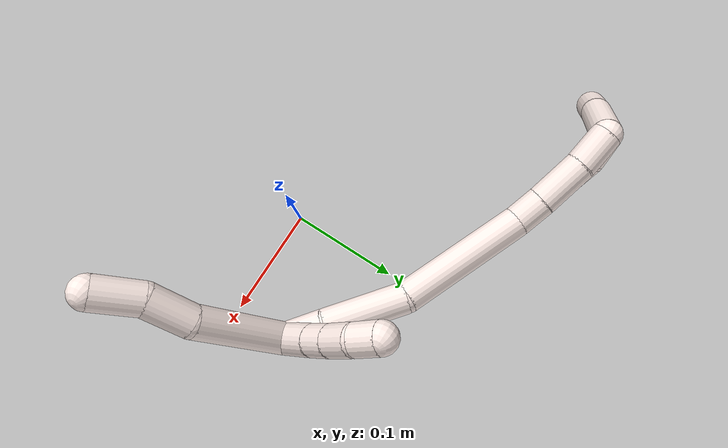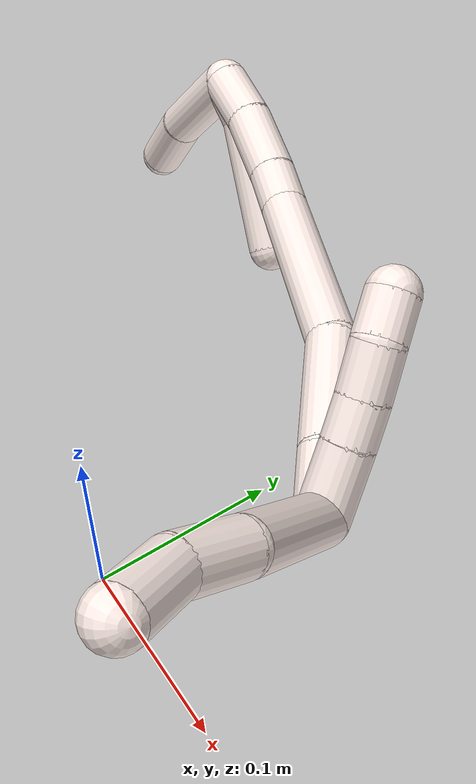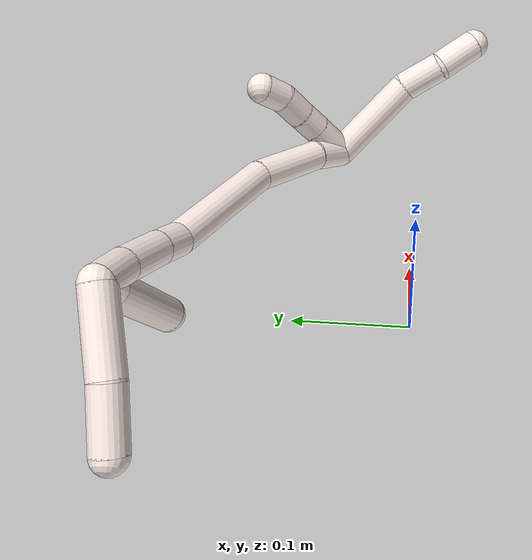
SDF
<sdf version="1.7">
 <world name="default">
  <model name="11">
   <static>0</static>
   <link name="11">
    <collision name="collision-cylinder-e_1_2_8">
     <pose>0.02234 0.021608 -0.024427 -2.41735 0.600591 -1.37054</pose>
     <geometry><cylinder><radius>0.0125</radius><length>0.07906</length></cylinder></geometry>
     <surface>
      <friction><ode><mu>1.16</mu><mu2>1.16</mu2><slip1>0</slip1><slip2>0</slip2></ode></friction>
      <contact><ode><kp>1e+06</kp><kd>1</kd><max_vel>0</max_vel><min_depth>0.001</min_depth></ode></contact>
     </surface>
    </collision>
    <visual name="visual-cylinder-e_1_2_8">
     <pose>0.02234 0.021608 -0.024427 -2.41735 0.600591 -1.37054</pose>
     <geometry><cylinder><radius>0.0125</radius><length>0.07906</length></cylinder></geometry>
     <material><ambient>1 0.933333 0.909804 1</ambient></material>
    </visual>
    <collision name="collision-cylinder-e_2_8_9">
     <pose>0.057583 0.053551 -0.055259 -2.12563 0.81512 -1.31925</pose>
     <geometry><cylinder><radius>0.0125</radius><length>0.035459</length></cylinder></geometry>
     <surface>
      <friction><ode><mu>1.16</mu><mu2>1.16</mu2><slip1>0</slip1><slip2>0</slip2></ode></friction>
      <contact><ode><kp>1e+06</kp><kd>1</kd><max_vel>0</max_vel><min_depth>0.001</min_depth></ode></contact>
     </surface>
    </collision>
    <visual name="visual-cylinder-e_2_8_9">
     <pose>0.057583 0.053551 -0.055259 -2.12563 0.81512 -1.31925</pose>
     <geometry><cylinder><radius>0.0125</radius><length>0.035459</length></cylinder></geometry>
     <material><ambient>1 0.933333 0.909804 1</ambient></material>
    </visual>
    <collision name="collision-cylinder-e_3_9_6">
     <pose>0.08376 0.069819 -0.071829 -2.61327 0.845368 -2.05878</pose>
     <geometry><cylinder><radius>0.0125</radius><length>0.035481</length></cylinder></geometry>
     <surface>
      <friction><ode><mu>1.16</mu><mu2>1.16</mu2><slip1>0</slip1><slip2>0</slip2></ode></friction>
      <contact><ode><kp>1e+06</kp><kd>1</kd><max_vel>0</max_vel><min_depth>0.001</min_depth></ode></contact>
     </surface>
    </collision>
    <visual name="visual-cylinder-e_3_9_6">
     <pose>0.08376 0.069819 -0.071829 -2.61327 0.845368 -2.05878</pose>
     <geometry><cylinder><radius>0.0125</radius><length>0.035481</length></cylinder></geometry>
     <material><ambient>1 0.933333 0.909804 1</ambient></material>
    </visual>
    <collision name="collision-cylinder-e_1_2_10">
     <pose>-0.013499 0.009691 -0.003987 -1.96109 -0.91069 1.26237</pose>
     <geometry><cylinder><radius>0.0125</radius><length>0.034177</length></cylinder></geometry>
     <surface>
      <friction><ode><mu>1.16</mu><mu2>1.16</mu2><slip1>0</slip1><slip2>0</slip2></ode></friction>
      <contact><ode><kp>1e+06</kp><kd>1</kd><max_vel>0</max_vel><min_depth>0.001</min_depth></ode></contact>
     </surface>
    </collision>
    <visual name="visual-cylinder-e_1_2_10">
     <pose>-0.013499 0.009691 -0.003987 -1.96109 -0.91069 1.26237</pose>
     <geometry><cylinder><radius>0.0125</radius><length>0.034177</length></cylinder></geometry>
     <material><ambient>1 0.933333 0.909804 1</ambient></material>
    </visual>
    <collision name="collision-cylinder-e_2_10_11">
     <pose>-0.035049 0.025159 -0.009916 -1.89506 -0.922786 1.21018</pose>
     <geometry><cylinder><radius>0.0125</radius><length>0.020198</length></cylinder></geometry>
     <surface>
      <friction><ode><mu>1.16</mu><mu2>1.16</mu2><slip1>0</slip1><slip2>0</slip2></ode></friction>
      <contact><ode><kp>1e+06</kp><kd>1</kd><max_vel>0</max_vel><min_depth>0.001</min_depth></ode></contact>
     </surface>
    </collision>
    <visual name="visual-cylinder-e_2_10_11">
     <pose>-0.035049 0.025159 -0.009916 -1.89506 -0.922786 1.21018</pose>
     <geometry><cylinder><radius>0.0125</radius><length>0.020198</length></cylinder></geometry>
     <material><ambient>1 0.933333 0.909804 1</ambient></material>
    </visual>
    <collision name="collision-cylinder-e_3_11_12">
     <pose>-0.052438 0.038236 -0.013969 -1.85233 -0.887747 1.128</pose>
     <geometry><cylinder><radius>0.0125</radius><length>0.024075</length></cylinder></geometry>
     <surface>
      <friction><ode><mu>1.16</mu><mu2>1.16</mu2><slip1>0</slip1><slip2>0</slip2></ode></friction>
      <contact><ode><kp>1e+06</kp><kd>1</kd><max_vel>0</max_vel><min_depth>0.001</min_depth></ode></contact>
     </surface>
    </collision>
    <visual name="visual-cylinder-e_3_11_12">
     <pose>-0.052438 0.038236 -0.013969 -1.85233 -0.887747 1.128</pose>
     <geometry><cylinder><radius>0.0125</radius><length>0.024075</length></cylinder></geometry>
     <material><ambient>1 0.933333 0.909804 1</ambient></material>
    </visual>
    <collision name="collision-cylinder-e_4_12_5">
     <pose>-0.071198 0.050733 -0.015545 -1.4683 -1.06449 0.977003</pose>
     <geometry><cylinder><radius>0.0125</radius><length>0.02155</length></cylinder></geometry>
     <surface>
      <friction><ode><mu>1.16</mu><mu2>1.16</mu2><slip1>0</slip1><slip2>0</slip2></ode></friction>
      <contact><ode><kp>1e+06</kp><kd>1</kd><max_vel>0</max_vel><min_depth>0.001</min_depth></ode></contact>
     </surface>
    </collision>
    <visual name="visual-cylinder-e_4_12_5">
     <pose>-0.071198 0.050733 -0.015545 -1.4683 -1.06449 0.977003</pose>
     <geometry><cylinder><radius>0.0125</radius><length>0.02155</length></cylinder></geometry>
     <material><ambient>1 0.933333 0.909804 1</ambient></material>
    </visual>
    <collision name="collision-cylinder-e_1_2_13">
     <pose>-0.012574 0.006538 0.007433 -0.721442 -0.903855 0.362224</pose>
     <geometry><cylinder><radius>0.0125</radius><length>0.032008</length></cylinder></geometry>
     <surface>
      <friction><ode><mu>1.16</mu><mu2>1.16</mu2><slip1>0</slip1><slip2>0</slip2></ode></friction>
      <contact><ode><kp>1e+06</kp><kd>1</kd><max_vel>0</max_vel><min_depth>0.001</min_depth></ode></contact>
     </surface>
    </collision>
    <visual name="visual-cylinder-e_1_2_13">
     <pose>-0.012574 0.006538 0.007433 -0.721442 -0.903855 0.362224</pose>
     <geometry><cylinder><radius>0.0125</radius><length>0.032008</length></cylinder></geometry>
     <material><ambient>1 0.933333 0.909804 1</ambient></material>
    </visual>
    <collision name="collision-cylinder-e_2_13_14">
     <pose>-0.04987 0.022457 0.033415 -0.468187 -0.871677 0.221203</pose>
     <geometry><cylinder><radius>0.0125</radius><length>0.064597</length></cylinder></geometry>
     <surface>
      <friction><ode><mu>1.16</mu><mu2>1.16</mu2><slip1>0</slip1><slip2>0</slip2></ode></friction>
      <contact><ode><kp>1e+06</kp><kd>1</kd><max_vel>0</max_vel><min_depth>0.001</min_depth></ode></contact>
     </surface>
    </collision>
    <visual name="visual-cylinder-e_2_13_14">
     <pose>-0.04987 0.022457 0.033415 -0.468187 -0.871677 0.221203</pose>
     <geometry><cylinder><radius>0.0125</radius><length>0.064597</length></cylinder></geometry>
     <material><ambient>1 0.933333 0.909804 1</ambient></material>
    </visual>
    <collision name="collision-cylinder-e_3_14_15">
     <pose>-0.103441 0.0515 0.091738 -0.45914 -0.576515 0.138364</pose>
     <geometry><cylinder><radius>0.0125</radius><length>0.105848</length></cylinder></geometry>
     <surface>
      <friction><ode><mu>1.16</mu><mu2>1.16</mu2><slip1>0</slip1><slip2>0</slip2></ode></friction>
      <contact><ode><kp>1e+06</kp><kd>1</kd><max_vel>0</max_vel><min_depth>0.001</min_depth></ode></contact>
     </surface>
    </collision>
    <visual name="visual-cylinder-e_3_14_15">
     <pose>-0.103441 0.0515 0.091738 -0.45914 -0.576515 0.138364</pose>
     <geometry><cylinder><radius>0.0125</radius><length>0.105848</length></cylinder></geometry>
     <material><ambient>1 0.933333 0.909804 1</ambient></material>
    </visual>
    <collision name="collision-cylinder-e_4_15_16">
     <pose>-0.138949 0.078753 0.138855 -0.801943 -0.562611 0.243795</pose>
     <geometry><cylinder><radius>0.0125</radius><length>0.024966</length></cylinder></geometry>
     <surface>
      <friction><ode><mu>1.16</mu><mu2>1.16</mu2><slip1>0</slip1><slip2>0</slip2></ode></friction>
      <contact><ode><kp>1e+06</kp><kd>1</kd><max_vel>0</max_vel><min_depth>0.001</min_depth></ode></contact>
     </surface>
    </collision>
    <visual name="visual-cylinder-e_4_15_16">
     <pose>-0.138949 0.078753 0.138855 -0.801943 -0.562611 0.243795</pose>
     <geometry><cylinder><radius>0.0125</radius><length>0.024966</length></cylinder></geometry>
     <material><ambient>1 0.933333 0.909804 1</ambient></material>
    </visual>
    <collision name="collision-cylinder-e_5_16_17">
     <pose>-0.155543 0.099068 0.15867 -0.795447 -0.508643 0.217554</pose>
     <geometry><cylinder><radius>0.0125</radius><length>0.040803</length></cylinder></geometry>
     <surface>
      <friction><ode><mu>1.16</mu><mu2>1.16</mu2><slip1>0</slip1><slip2>0</slip2></ode></friction>
      <contact><ode><kp>1e+06</kp><kd>1</kd><max_vel>0</max_vel><min_depth>0.001</min_depth></ode></contact>
     </surface>
    </collision>
    <visual name="visual-cylinder-e_5_16_17">
     <pose>-0.155543 0.099068 0.15867 -0.795447 -0.508643 0.217554</pose>
     <geometry><cylinder><radius>0.0125</radius><length>0.040803</length></cylinder></geometry>
     <material><ambient>1 0.933333 0.909804 1</ambient></material>
    </visual>
    <collision name="collision-cylinder-e_6_17_1">
     <pose>-0.171455 0.122428 0.181323 -0.807166 -0.385646 0.166367</pose>
     <geometry><cylinder><radius>0.0125</radius><length>0.031778</length></cylinder></geometry>
     <surface>
      <friction><ode><mu>1.16</mu><mu2>1.16</mu2><slip1>0</slip1><slip2>0</slip2></ode></friction>
      <contact><ode><kp>1e+06</kp><kd>1</kd><max_vel>0</max_vel><min_depth>0.001</min_depth></ode></contact>
     </surface>
    </collision>
    <visual name="visual-cylinder-e_6_17_1">
     <pose>-0.171455 0.122428 0.181323 -0.807166 -0.385646 0.166367</pose>
     <geometry><cylinder><radius>0.0125</radius><length>0.031778</length></cylinder></geometry>
     <material><ambient>1 0.933333 0.909804 1</ambient></material>
    </visual>
    <collision name="collision-cylinder-e_1_1_18">
     <pose>-0.173926 0.121786 0.18904 1.78591 0.294921 0.364891</pose>
     <geometry><cylinder><radius>0.0125</radius><length>0.024124</length></cylinder></geometry>
     <surface>
      <friction><ode><mu>1.16</mu><mu2>1.16</mu2><slip1>0</slip1><slip2>0</slip2></ode></friction>
      <contact><ode><kp>1e+06</kp><kd>1</kd><max_vel>0</max_vel><min_depth>0.001</min_depth></ode></contact>
     </surface>
    </collision>
    <visual name="visual-cylinder-e_1_1_18">
     <pose>-0.173926 0.121786 0.18904 1.78591 0.294921 0.364891</pose>
     <geometry><cylinder><radius>0.0125</radius><length>0.024124</length></cylinder></geometry>
     <material><ambient>1 0.933333 0.909804 1</ambient></material>
    </visual>
    <collision name="collision-cylinder-e_2_18_4">
     <pose>-0.15156 0.077803 0.182863 1.68387 0.520275 0.579436</pose>
     <geometry><cylinder><radius>0.0125</radius><length>0.075876</length></cylinder></geometry>
     <surface>
      <friction><ode><mu>1.16</mu><mu2>1.16</mu2><slip1>0</slip1><slip2>0</slip2></ode></friction>
      <contact><ode><kp>1e+06</kp><kd>1</kd><max_vel>0</max_vel><min_depth>0.001</min_depth></ode></contact>
     </surface>
    </collision>
    <visual name="visual-cylinder-e_2_18_4">
     <pose>-0.15156 0.077803 0.182863 1.68387 0.520275 0.579436</pose>
     <geometry><cylinder><radius>0.0125</radius><length>0.075876</length></cylinder></geometry>
     <material><ambient>1 0.933333 0.909804 1</ambient></material>
    </visual>
    <collision name="collision-cylinder-e_1_1_19">
     <pose>-0.17062 0.127277 0.218995 0.207398 0.23786 0.024871</pose>
     <geometry><cylinder><radius>0.0125</radius><length>0.057815</length></cylinder></geometry>
     <surface>
      <friction><ode><mu>1.16</mu><mu2>1.16</mu2><slip1>0</slip1><slip2>0</slip2></ode></friction>
      <contact><ode><kp>1e+06</kp><kd>1</kd><max_vel>0</max_vel><min_depth>0.001</min_depth></ode></contact>
     </surface>
    </collision>
    <visual name="visual-cylinder-e_1_1_19">
     <pose>-0.17062 0.127277 0.218995 0.207398 0.23786 0.024871</pose>
     <geometry><cylinder><radius>0.0125</radius><length>0.057815</length></cylinder></geometry>
     <material><ambient>1 0.933333 0.909804 1</ambient></material>
    </visual>
    <collision name="collision-cylinder-e_2_19_3">
     <pose>-0.160146 0.114639 0.266096 0.336197 0.174538 0.029692</pose>
     <geometry><cylinder><radius>0.0125</radius><length>0.042185</length></cylinder></geometry>
     <surface>
      <friction><ode><mu>1.16</mu><mu2>1.16</mu2><slip1>0</slip1><slip2>0</slip2></ode></friction>
      <contact><ode><kp>1e+06</kp><kd>1</kd><max_vel>0</max_vel><min_depth>0.001</min_depth></ode></contact>
     </surface>
    </collision>
    <visual name="visual-cylinder-e_2_19_3">
     <pose>-0.160146 0.114639 0.266096 0.336197 0.174538 0.029692</pose>
     <geometry><cylinder><radius>0.0125</radius><length>0.042185</length></cylinder></geometry>
     <material><ambient>1 0.933333 0.909804 1</ambient></material>
    </visual>
    <collision name="collision-sphere-3">
     <pose>-0.156484 0.107786 0.285705 0 -0 0</pose>
     <geometry><sphere><radius>0.0125</radius></sphere></geometry>
     <surface>
      <friction><ode><mu>1.16</mu><mu2>1.16</mu2><slip1>0</slip1><slip2>0</slip2></ode></friction>
      <contact><ode><kp>1e+06</kp><kd>1</kd><max_vel>0</max_vel><min_depth>0.001</min_depth></ode></contact>
     </surface>
    </collision>
    <visual name="visual-sphere-3">
     <pose>-0.156484 0.107786 0.285705 0 -0 0</pose>
     <geometry><sphere><radius>0.0125</radius></sphere></geometry>
     <material><ambient>1 0.933333 0.909804 1</ambient></material>
    </visual>
    <collision name="collision-sphere-19">
     <pose>-0.163809 0.121492 0.246487 0 -0 0</pose>
     <geometry><sphere><radius>0.0125</radius></sphere></geometry>
     <surface>
      <friction><ode><mu>1.16</mu><mu2>1.16</mu2><slip1>0</slip1><slip2>0</slip2></ode></friction>
      <contact><ode><kp>1e+06</kp><kd>1</kd><max_vel>0</max_vel><min_depth>0.001</min_depth></ode></contact>
     </surface>
    </collision>
    <visual name="visual-sphere-19">
     <pose>-0.163809 0.121492 0.246487 0 -0 0</pose>
     <geometry><sphere><radius>0.0125</radius></sphere></geometry>
     <material><ambient>1 0.933333 0.909804 1</ambient></material>
    </visual>
    <collision name="collision-sphere-11">
     <pose>-0.043101 0.030937 -0.011858 0 -0 0</pose>
     <geometry><sphere><radius>0.0125</radius></sphere></geometry>
     <surface>
      <friction><ode><mu>1.16</mu><mu2>1.16</mu2><slip1>0</slip1><slip2>0</slip2></ode></friction>
      <contact><ode><kp>1e+06</kp><kd>1</kd><max_vel>0</max_vel><min_depth>0.001</min_depth></ode></contact>
     </surface>
    </collision>
    <visual name="visual-sphere-11">
     <pose>-0.043101 0.030937 -0.011858 0 -0 0</pose>
     <geometry><sphere><radius>0.0125</radius></sphere></geometry>
     <material><ambient>1 0.933333 0.909804 1</ambient></material>
    </visual>
    <collision name="collision-sphere-10">
     <pose>-0.026997 0.019381 -0.007973 0 -0 0</pose>
     <geometry><sphere><radius>0.0125</radius></sphere></geometry>
     <surface>
      <friction><ode><mu>1.16</mu><mu2>1.16</mu2><slip1>0</slip1><slip2>0</slip2></ode></friction>
      <contact><ode><kp>1e+06</kp><kd>1</kd><max_vel>0</max_vel><min_depth>0.001</min_depth></ode></contact>
     </surface>
    </collision>
    <visual name="visual-sphere-10">
     <pose>-0.026997 0.019381 -0.007973 0 -0 0</pose>
     <geometry><sphere><radius>0.0125</radius></sphere></geometry>
     <material><ambient>1 0.933333 0.909804 1</ambient></material>
    </visual>
    <collision name="collision-sphere-6">
     <pose>0.097034 0.075752 -0.081994 0 -0 0</pose>
     <geometry><sphere><radius>0.0125</radius></sphere></geometry>
     <surface>
      <friction><ode><mu>1.16</mu><mu2>1.16</mu2><slip1>0</slip1><slip2>0</slip2></ode></friction>
      <contact><ode><kp>1e+06</kp><kd>1</kd><max_vel>0</max_vel><min_depth>0.001</min_depth></ode></contact>
     </surface>
    </collision>
    <visual name="visual-sphere-6">
     <pose>0.097034 0.075752 -0.081994 0 -0 0</pose>
     <geometry><sphere><radius>0.0125</radius></sphere></geometry>
     <material><ambient>1 0.933333 0.909804 1</ambient></material>
    </visual>
    <collision name="collision-sphere-9">
     <pose>0.070487 0.063886 -0.061664 0 -0 0</pose>
     <geometry><sphere><radius>0.0125</radius></sphere></geometry>
     <surface>
      <friction><ode><mu>1.16</mu><mu2>1.16</mu2><slip1>0</slip1><slip2>0</slip2></ode></friction>
      <contact><ode><kp>1e+06</kp><kd>1</kd><max_vel>0</max_vel><min_depth>0.001</min_depth></ode></contact>
     </surface>
    </collision>
    <visual name="visual-sphere-9">
     <pose>0.070487 0.063886 -0.061664 0 -0 0</pose>
     <geometry><sphere><radius>0.0125</radius></sphere></geometry>
     <material><ambient>1 0.933333 0.909804 1</ambient></material>
    </visual>
    <collision name="collision-sphere-2">
     <geometry><sphere><radius>0.0125</radius></sphere></geometry>
     <surface>
      <friction><ode><mu>1.16</mu><mu2>1.16</mu2><slip1>0</slip1><slip2>0</slip2></ode></friction>
      <contact><ode><kp>1e+06</kp><kd>1</kd><max_vel>0</max_vel><min_depth>0.001</min_depth></ode></contact>
     </surface>
    </collision>
    <visual name="visual-sphere-2">
     <geometry><sphere><radius>0.0125</radius></sphere></geometry>
     <material><ambient>1 0.933333 0.909804 1</ambient></material>
    </visual>
    <collision name="collision-sphere-8">
     <pose>0.044679 0.043216 -0.048853 0 -0 0</pose>
     <geometry><sphere><radius>0.0125</radius></sphere></geometry>
     <surface>
      <friction><ode><mu>1.16</mu><mu2>1.16</mu2><slip1>0</slip1><slip2>0</slip2></ode></friction>
      <contact><ode><kp>1e+06</kp><kd>1</kd><max_vel>0</max_vel><min_depth>0.001</min_depth></ode></contact>
     </surface>
    </collision>
    <visual name="visual-sphere-8">
     <pose>0.044679 0.043216 -0.048853 0 -0 0</pose>
     <geometry><sphere><radius>0.0125</radius></sphere></geometry>
     <material><ambient>1 0.933333 0.909804 1</ambient></material>
    </visual>
    <collision name="collision-sphere-12">
     <pose>-0.061775 0.045535 -0.01608 0 -0 0</pose>
     <geometry><sphere><radius>0.0125</radius></sphere></geometry>
     <surface>
      <friction><ode><mu>1.16</mu><mu2>1.16</mu2><slip1>0</slip1><slip2>0</slip2></ode></friction>
      <contact><ode><kp>1e+06</kp><kd>1</kd><max_vel>0</max_vel><min_depth>0.001</min_depth></ode></contact>
     </surface>
    </collision>
    <visual name="visual-sphere-12">
     <pose>-0.061775 0.045535 -0.01608 0 -0 0</pose>
     <geometry><sphere><radius>0.0125</radius></sphere></geometry>
     <material><ambient>1 0.933333 0.909804 1</ambient></material>
    </visual>
    <collision name="collision-sphere-5">
     <pose>-0.080621 0.05593 -0.01501 0 -0 0</pose>
     <geometry><sphere><radius>0.0125</radius></sphere></geometry>
     <surface>
      <friction><ode><mu>1.16</mu><mu2>1.16</mu2><slip1>0</slip1><slip2>0</slip2></ode></friction>
      <contact><ode><kp>1e+06</kp><kd>1</kd><max_vel>0</max_vel><min_depth>0.001</min_depth></ode></contact>
     </surface>
    </collision>
    <visual name="visual-sphere-5">
     <pose>-0.080621 0.05593 -0.01501 0 -0 0</pose>
     <geometry><sphere><radius>0.0125</radius></sphere></geometry>
     <material><ambient>1 0.933333 0.909804 1</ambient></material>
    </visual>
    <collision name="collision-sphere-13">
     <pose>-0.025149 0.013077 0.014866 0 -0 0</pose>
     <geometry><sphere><radius>0.0125</radius></sphere></geometry>
     <surface>
      <friction><ode><mu>1.16</mu><mu2>1.16</mu2><slip1>0</slip1><slip2>0</slip2></ode></friction>
      <contact><ode><kp>1e+06</kp><kd>1</kd><max_vel>0</max_vel><min_depth>0.001</min_depth></ode></contact>
     </surface>
    </collision>
    <visual name="visual-sphere-13">
     <pose>-0.025149 0.013077 0.014866 0 -0 0</pose>
     <geometry><sphere><radius>0.0125</radius></sphere></geometry>
     <material><ambient>1 0.933333 0.909804 1</ambient></material>
    </visual>
    <collision name="collision-sphere-14">
     <pose>-0.074592 0.031836 0.051964 0 -0 0</pose>
     <geometry><sphere><radius>0.0125</radius></sphere></geometry>
     <surface>
      <friction><ode><mu>1.16</mu><mu2>1.16</mu2><slip1>0</slip1><slip2>0</slip2></ode></friction>
      <contact><ode><kp>1e+06</kp><kd>1</kd><max_vel>0</max_vel><min_depth>0.001</min_depth></ode></contact>
     </surface>
    </collision>
    <visual name="visual-sphere-14">
     <pose>-0.074592 0.031836 0.051964 0 -0 0</pose>
     <geometry><sphere><radius>0.0125</radius></sphere></geometry>
     <material><ambient>1 0.933333 0.909804 1</ambient></material>
    </visual>
    <collision name="collision-sphere-15">
     <pose>-0.13229 0.071164 0.131513 0 -0 0</pose>
     <geometry><sphere><radius>0.0125</radius></sphere></geometry>
     <surface>
      <friction><ode><mu>1.16</mu><mu2>1.16</mu2><slip1>0</slip1><slip2>0</slip2></ode></friction>
      <contact><ode><kp>1e+06</kp><kd>1</kd><max_vel>0</max_vel><min_depth>0.001</min_depth></ode></contact>
     </surface>
    </collision>
    <visual name="visual-sphere-15">
     <pose>-0.13229 0.071164 0.131513 0 -0 0</pose>
     <geometry><sphere><radius>0.0125</radius></sphere></geometry>
     <material><ambient>1 0.933333 0.909804 1</ambient></material>
    </visual>
    <collision name="collision-sphere-16">
     <pose>-0.145607 0.086342 0.146197 0 -0 0</pose>
     <geometry><sphere><radius>0.0125</radius></sphere></geometry>
     <surface>
      <friction><ode><mu>1.16</mu><mu2>1.16</mu2><slip1>0</slip1><slip2>0</slip2></ode></friction>
      <contact><ode><kp>1e+06</kp><kd>1</kd><max_vel>0</max_vel><min_depth>0.001</min_depth></ode></contact>
     </surface>
    </collision>
    <visual name="visual-sphere-16">
     <pose>-0.145607 0.086342 0.146197 0 -0 0</pose>
     <geometry><sphere><radius>0.0125</radius></sphere></geometry>
     <material><ambient>1 0.933333 0.909804 1</ambient></material>
    </visual>
    <collision name="collision-sphere-17">
     <pose>-0.165478 0.111794 0.171142 0 -0 0</pose>
     <geometry><sphere><radius>0.0125</radius></sphere></geometry>
     <surface>
      <friction><ode><mu>1.16</mu><mu2>1.16</mu2><slip1>0</slip1><slip2>0</slip2></ode></friction>
      <contact><ode><kp>1e+06</kp><kd>1</kd><max_vel>0</max_vel><min_depth>0.001</min_depth></ode></contact>
     </surface>
    </collision>
    <visual name="visual-sphere-17">
     <pose>-0.165478 0.111794 0.171142 0 -0 0</pose>
     <geometry><sphere><radius>0.0125</radius></sphere></geometry>
     <material><ambient>1 0.933333 0.909804 1</ambient></material>
    </visual>
    <collision name="collision-sphere-1">
     <pose>-0.177432 0.133062 0.191504 0 -0 0</pose>
     <geometry><sphere><radius>0.0125</radius></sphere></geometry>
     <surface>
      <friction><ode><mu>1.16</mu><mu2>1.16</mu2><slip1>0</slip1><slip2>0</slip2></ode></friction>
      <contact><ode><kp>1e+06</kp><kd>1</kd><max_vel>0</max_vel><min_depth>0.001</min_depth></ode></contact>
     </surface>
    </collision>
    <visual name="visual-sphere-1">
     <pose>-0.177432 0.133062 0.191504 0 -0 0</pose>
     <geometry><sphere><radius>0.0125</radius></sphere></geometry>
     <material><ambient>1 0.933333 0.909804 1</ambient></material>
    </visual>
    <collision name="collision-sphere-18">
     <pose>-0.17042 0.110511 0.186577 0 -0 0</pose>
     <geometry><sphere><radius>0.0125</radius></sphere></geometry>
     <surface>
      <friction><ode><mu>1.16</mu><mu2>1.16</mu2><slip1>0</slip1><slip2>0</slip2></ode></friction>
      <contact><ode><kp>1e+06</kp><kd>1</kd><max_vel>0</max_vel><min_depth>0.001</min_depth></ode></contact>
     </surface>
    </collision>
    <visual name="visual-sphere-18">
     <pose>-0.17042 0.110511 0.186577 0 -0 0</pose>
     <geometry><sphere><radius>0.0125</radius></sphere></geometry>
     <material><ambient>1 0.933333 0.909804 1</ambient></material>
    </visual>
    <collision name="collision-sphere-4">
     <pose>-0.1327 0.045095 0.179148 0 -0 0</pose>
     <geometry><sphere><radius>0.0125</radius></sphere></geometry>
     <surface>
      <friction><ode><mu>1.16</mu><mu2>1.16</mu2><slip1>0</slip1><slip2>0</slip2></ode></friction>
      <contact><ode><kp>1e+06</kp><kd>1</kd><max_vel>0</max_vel><min_depth>0.001</min_depth></ode></contact>
     </surface>
    </collision>
    <visual name="visual-sphere-4">
     <pose>-0.1327 0.045095 0.179148 0 -0 0</pose>
     <geometry><sphere><radius>0.0125</radius></sphere></geometry>
     <material><ambient>1 0.933333 0.909804 1</ambient></material>
    </visual>
    <inertial>
     <pose>-0.079119 0.062645 0.083579 0 -0 0</pose>
     <mass>0.75</mass>
     <inertia><ixx>0.000175</ixx><ixy>0</ixy><ixz>0</ixz><iyy>0.0002</iyy><iyz>0</iyz><izz>-0</izz></inertia>
    </inertial>
   </link>
   <pose>0.093775 0.066471 0.118748 2.27379 0.200314 -1.35405</pose>
  </model>
 </world>
</sdf>
